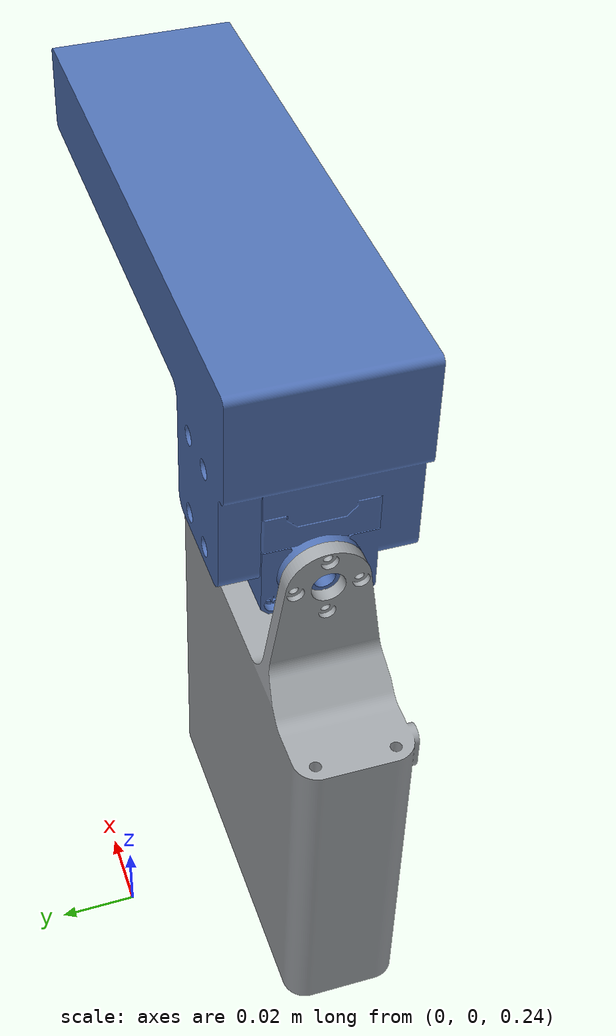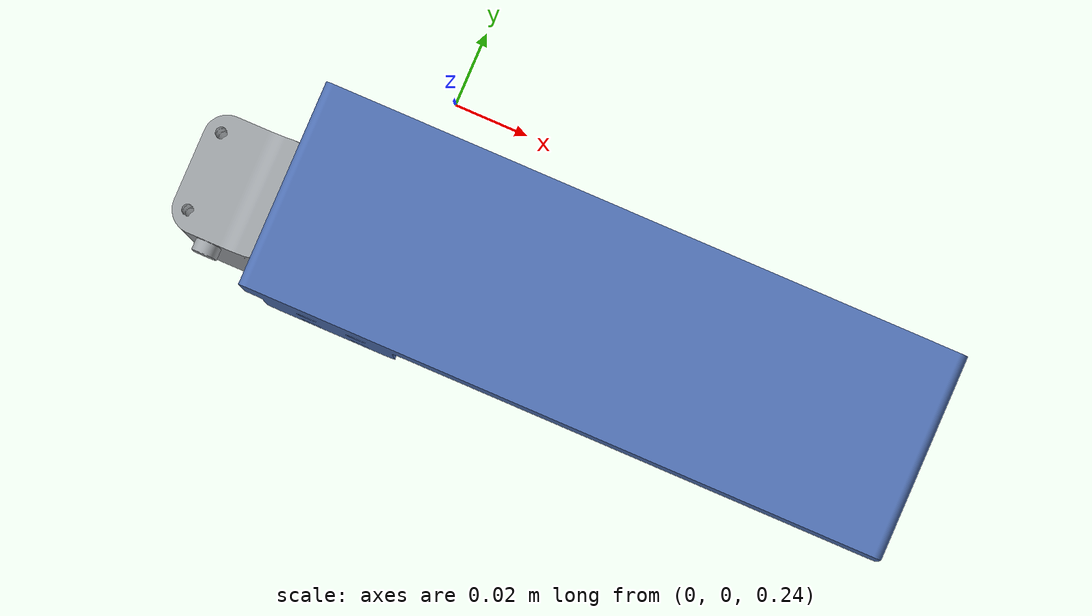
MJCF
<?xml version="1.0" ?>
<mujoco model="sysID_XC430_extended">
  <compiler angle="radian" meshdir="assets" autolimits="true"/>
  <option timestep="0.001" iterations="50" solver="Newton" tolerance="1e-10"/>
  <default>
    <default class="sysID_XC430_extended">
      <joint damping="0.01" frictionloss="0.05" armature="0.005"/>
      <position kp="50" dampratio="1"/>
      <default class="visual">
        <geom type="mesh" contype="0" conaffinity="0" group="2"/>
      </default>
      <default class="collision">
        <geom group="3"/>
      </default>
    </default>
  </default>
  <worldbody>
    <body name="base" pos="0 0 0" quat="1 0 0 0" childclass="sysID_XC430_extended">
      <inertial pos="0.0267655 -0.0456118 0.399612" mass="0.1339" fullinertia="7.52202e-05 0.000280547 0.00024289 -2.6545e-07 -6.39526e-05 -1.72666e-07"/>
      <geom type="mesh" class="visual" pos="0.0267655 -0.0456118 0.399612" quat="1 0 0 0" mesh="base_visual" material="base_visual_material"/>
      <geom type="mesh" class="collision" pos="0.0267655 -0.0456118 0.399612" quat="1 0 0 0" mesh="base_collision" material="base_collision_material"/>
      <body name="arm_430" pos="0.0215522 -0.045682 0.372238" quat="8.50354e-16 -0.707107 7.77156e-16 -0.707107">
        <joint axis="0 0 1" name="joint_0" type="hinge" range="0.0 3.14159265358979"/>
        <inertial pos="-0.0787491 9.81819e-06 -0.019" mass="0.3549" fullinertia="0.000340755 0.000555983 0.000291749 -9.73566e-08 1.71887e-18 1.81619e-16"/>
        <geom type="mesh" class="visual" pos="-0.0787491 9.81819e-06 -0.019" quat="8.58707e-16 0.707107 -7.77156e-16 0.707107" mesh="arm_430_visual" material="arm_430_visual_material"/>
        <geom type="mesh" class="collision" pos="-0.0787491 9.81819e-06 -0.019" quat="8.58707e-16 0.707107 -7.77156e-16 0.707107" mesh="arm_430_collision" material="arm_430_collision_material"/>
      </body>
    </body>
  </worldbody>
  <asset>
    <mesh file="merged/base_visual.stl"/>
    <mesh file="merged/arm_430_collision.stl"/>
    <mesh file="merged/arm_430_visual.stl"/>
    <mesh file="merged/base_collision.stl"/>
    <material name="base_visual_material" rgba="0.315732 0.44617 0.708641 1"/>
    <material name="base_collision_material" rgba="0.315732 0.44617 0.708641 1"/>
    <material name="arm_430_visual_material" rgba="0.634878 0.653046 0.669534 1"/>
    <material name="arm_430_collision_material" rgba="0.634878 0.653046 0.669534 1"/>
  </asset>
  <actuator>
    <position class="sysID_XC430_extended" name="joint_0" joint="joint_0" inheritrange="1"/>
  </actuator>
  <equality/>
</mujoco>
